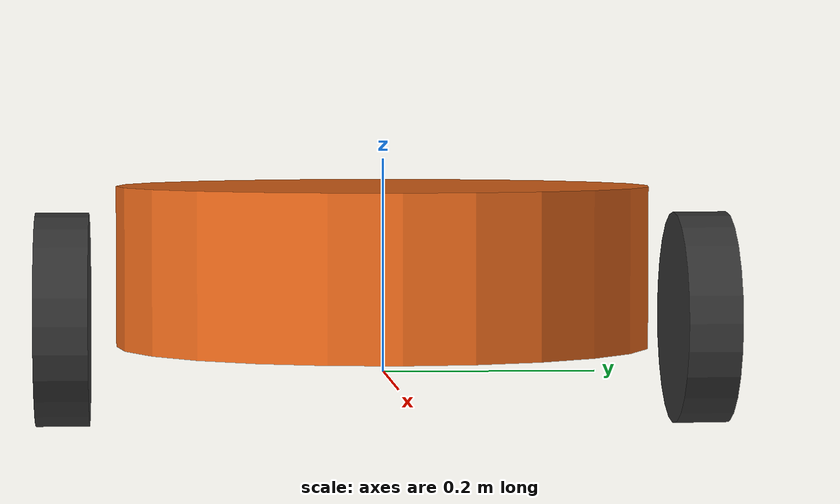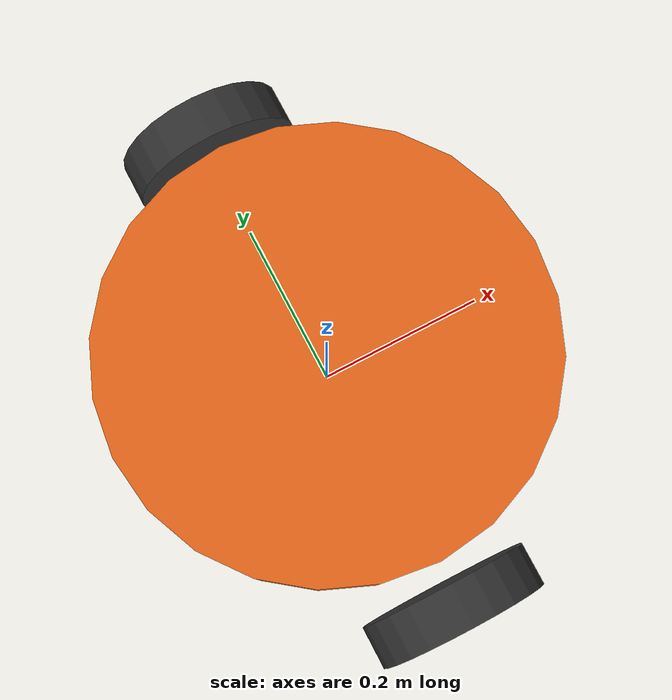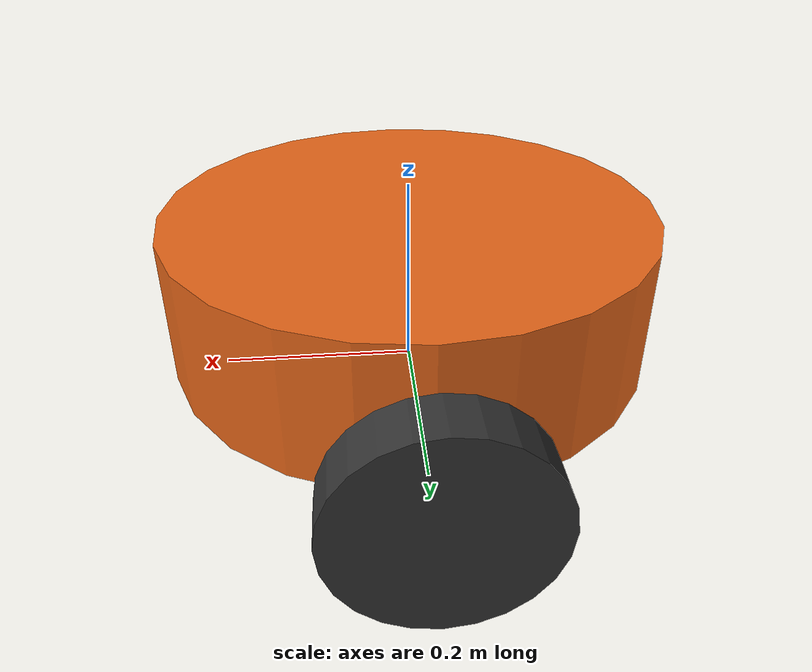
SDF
<?xml version="1.0" ?>
<sdf version="1.8">
  <model name="overwatch_agent">
    <pose>0 0 0.1 0 0 0</pose>

    <link name="base_link">
      <inertial>
        <mass>5.0</mass>
        <inertia>
          <ixx>0.05</ixx>
          <iyy>0.05</iyy>
          <izz>0.05</izz>
        </inertia>
      </inertial>
      <collision name="base_collision">
        <geometry>
          <cylinder>
            <radius>0.25</radius>
            <length>0.15</length>
          </cylinder>
        </geometry>
      </collision>
      <visual name="base_visual">
        <geometry>
          <cylinder>
            <radius>0.25</radius>
            <length>0.15</length>
          </cylinder>
        </geometry>
        <material>
          <ambient>0.9 0.4 0.1 1</ambient>
          <diffuse>0.9 0.4 0.1 1</diffuse>
        </material>
      </visual>
    </link>

    <link name="left_wheel">
      <pose>0 0.3 -0.05 -1.5707 0 0</pose>
      <inertial>
        <mass>1.0</mass>
        <inertia>
          <ixx>0.005</ixx>
          <iyy>0.005</iyy>
          <izz>0.005</izz>
        </inertia>
      </inertial>
      <collision name="left_wheel_collision">
        <geometry>
          <cylinder>
            <radius>0.1</radius>
            <length>0.05</length>
          </cylinder>
        </geometry>
      </collision>
      <visual name="left_wheel_visual">
        <geometry>
          <cylinder>
            <radius>0.1</radius>
            <length>0.05</length>
          </cylinder>
        </geometry>
        <material>
          <ambient>0.2 0.2 0.2 1</ambient>
          <diffuse>0.2 0.2 0.2 1</diffuse>
        </material>
      </visual>
    </link>

    <link name="right_wheel">
      <pose>0 -0.3 -0.05 -1.5707 0 0</pose>
      <inertial>
        <mass>1.0</mass>
        <inertia>
          <ixx>0.005</ixx>
          <iyy>0.005</iyy>
          <izz>0.005</izz>
        </inertia>
      </inertial>
      <collision name="right_wheel_collision">
        <geometry>
          <cylinder>
            <radius>0.1</radius>
            <length>0.05</length>
          </cylinder>
        </geometry>
      </collision>
      <visual name="right_wheel_visual">
        <geometry>
          <cylinder>
            <radius>0.1</radius>
            <length>0.05</length>
          </cylinder>
        </geometry>
        <material>
          <ambient>0.2 0.2 0.2 1</ambient>
          <diffuse>0.2 0.2 0.2 1</diffuse>
        </material>
      </visual>
    </link>

    <link name="lidar_link">
      <pose>0 0 0.12 0 0 0</pose>
      <inertial>
        <mass>0.2</mass>
        <inertia>
          <ixx>0.001</ixx>
          <iyy>0.001</iyy>
          <izz>0.001</izz>
        </inertia>
      </inertial>
      <sensor name="lidar" type="gpu_lidar">
        <pose>0 0 0 0 0 0</pose>
        <update_rate>10</update_rate>
        <ray>
          <scan>
            <horizontal>
              <samples>360</samples>
              <resolution>1</resolution>
              <min_angle>-3.14159</min_angle>
              <max_angle>3.14159</max_angle>
            </horizontal>
          </scan>
          <range>
            <min>0.15</min>
            <max>12.0</max>
            <resolution>0.01</resolution>
          </range>
        </ray>
        <always_on>1</always_on>
        <visualize>true</visualize>
      </sensor>
    </link>

    <joint name="left_wheel_joint" type="revolute">
      <parent>base_link</parent>
      <child>left_wheel</child>
      <axis>
        <xyz>0 0 1</xyz>
        <limit>
          <lower>-1.79769e+308</lower>
          <upper>1.79769e+308</upper>
        </limit>
      </axis>
    </joint>

    <joint name="right_wheel_joint" type="revolute">
      <parent>base_link</parent>
      <child>right_wheel</child>
      <axis>
        <xyz>0 0 1</xyz>
        <limit>
          <lower>-1.79769e+308</lower>
          <upper>1.79769e+308</upper>
        </limit>
      </axis>
    </joint>

    <joint name="lidar_joint" type="fixed">
      <parent>base_link</parent>
      <child>lidar_link</child>
      <pose>0 0 0.1 0 0 0</pose>
    </joint>

    <plugin filename="gz-sim-diff-drive-system" name="gz::sim::systems::DiffDrive">
      <left_joint>left_wheel_joint</left_joint>
      <right_joint>right_wheel_joint</right_joint>
      <wheel_separation>0.6</wheel_separation>
      <wheel_radius>0.1</wheel_radius>
      <odom_publish_frequency>30</odom_publish_frequency>
      <frame_id>odom</frame_id>
      <child_frame_id>base_link</child_frame_id>
    </plugin>

    <plugin filename="gz-sim-joint-state-publisher-system" name="gz::sim::systems::JointStatePublisher">
      <topic>joint_states</topic>
    </plugin>
  </model>
</sdf>
